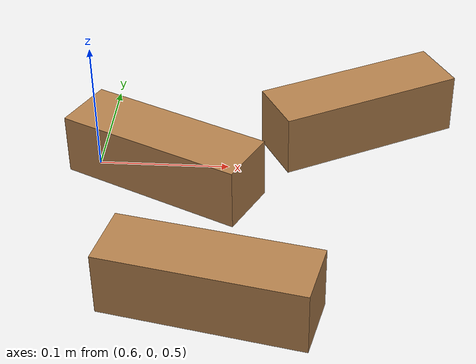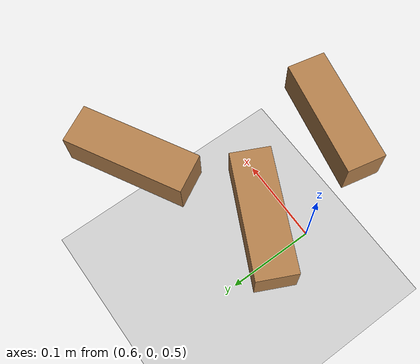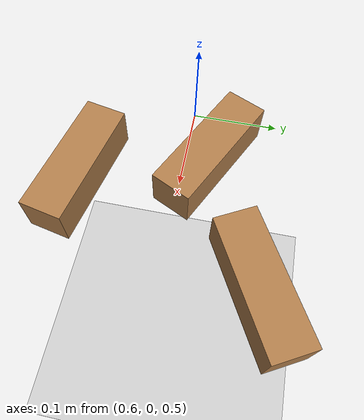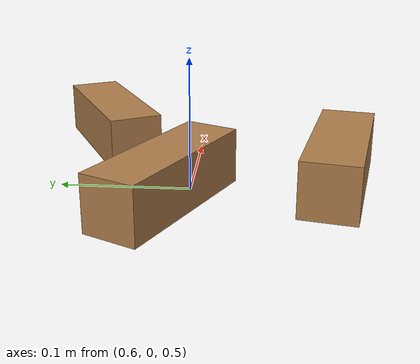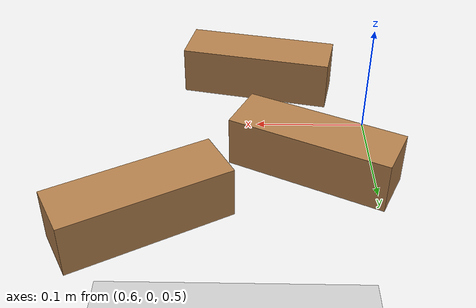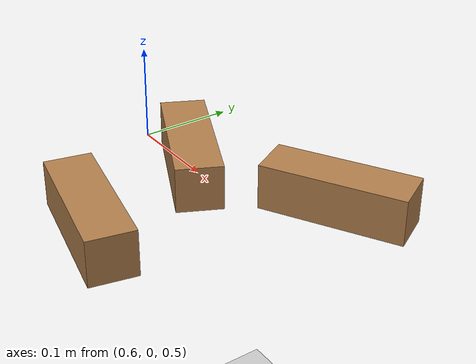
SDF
<sdf version="1.6">
 <world name="default">
  <light name="sun" type="directional">
   <pose>0 0 10 0 -0 0</pose>
   <diffuse>0.8 0.8 0.8 1</diffuse>
   <specular>0.2 0.2 0.2 1</specular>
   <attenuation>
    <range>1000</range>
    <constant>0.9</constant>
    <linear>0.01</linear>
    <quadratic>0.001</quadratic>
   </attenuation>
   <direction>-0.5 0.1 -0.9</direction>
  </light>
  <model name="ground_plane">
   <static>1</static>
   <link name="link">
    <collision name="collision">
     <geometry><plane><normal>0 0 1</normal><size>100 100</size></plane></geometry>
     <surface>
      <contact><collide_bitmask>65535</collide_bitmask></contact>
      <friction><ode><mu>100</mu><mu2>50</mu2></ode></friction>
     </surface>
    </collision>
    <visual name="visual">
     <cast_shadows>0</cast_shadows>
     <geometry><plane><normal>0 0 1</normal><size>100 100</size></plane></geometry>
     <material>
      <script><uri>file://media/materials/scripts/gazebo.material</uri><name>Gazebo/Grey</name></script>
     </material>
    </visual>
   </link>
  </model>
  <gravity>0 0 -9.8</gravity>
  <magnetic_field>6e-06 2.3e-05 -4.2e-05</magnetic_field>
  <atmosphere type="adiabatic"/>
  <physics name="default_physics" default="0" type="ode">
   <max_step_size>0.001</max_step_size>
   <real_time_factor>1</real_time_factor>
   <real_time_update_rate>1000</real_time_update_rate>
  </physics>
  <scene><ambient>0.4 0.4 0.4 1</ambient><background>0.7 0.7 0.7 1</background><shadows>1</shadows></scene>
  <audio><device>default</device></audio>
  <spherical_coordinates>
   <surface_model>EARTH_WGS84</surface_model>
   <latitude_deg>0</latitude_deg>
   <longitude_deg>0</longitude_deg>
   <elevation>0</elevation>
   <heading_deg>0</heading_deg>
  </spherical_coordinates>
  <model name="unit_box_0">
   <link name="link">
    <inertial>
     <mass>3</mass>
     <inertia>
      <ixx>0.681248</ixx>
      <ixy>0</ixy>
      <ixz>0</ixz>
      <iyy>0.308235</iyy>
      <iyz>0</iyz>
      <izz>0.681248</izz>
     </inertia>
    </inertial>
    <visual name="ModelPreview_1::link::visual_1">
     <geometry><box><size>0.05 0.15474 0.05</size></box></geometry>
     <material>
      <script><name>Gazebo/Wood</name><uri>file://media/materials/scripts/gazebo.material</uri></script>
      <ambient>0.3 0.3 0.3 1</ambient>
      <diffuse>0.7 0.7 0.7 1</diffuse>
      <specular>0.01 0.01 0.01 1</specular>
      <emissive>0 0 0 1</emissive>
      <shader type="vertex"><normal_map>__default__</normal_map></shader>
     </material>
    </visual>
    <visual name="visual">
     <geometry><box><size>0.05 0.15474 0.05</size></box></geometry>
     <material>
      <script><name>Gazebo/Wood</name><uri>file://media/materials/scripts/gazebo.material</uri></script>
      <ambient>0.3 0.3 0.3 1</ambient>
      <diffuse>0.7 0.7 0.7 1</diffuse>
      <specular>0.01 0.01 0.01 1</specular>
      <emissive>0 0 0 1</emissive>
      <shader type="vertex"><normal_map>__default__</normal_map></shader>
     </material>
    </visual>
    <collision name="collision">
     <geometry><box><size>0.05 0.15474 0.05</size></box></geometry>
     <surface>
      <friction>
       <ode><mu>10000</mu><mu2>10000</mu2><fdir1>0 0 0</fdir1><slip1>0</slip1><slip2>0</slip2></ode>
       <torsional>
        <coefficient>1</coefficient>
        <patch_radius>0</patch_radius>
        <surface_radius>0</surface_radius>
        <use_patch_radius>1</use_patch_radius>
        <ode><slip>0</slip></ode>
       </torsional>
      </friction>
      <bounce><restitution_coefficient>0</restitution_coefficient><threshold>1e+06</threshold></bounce>
      <contact>
       <collide_without_contact>0</collide_without_contact>
       <collide_without_contact_bitmask>1</collide_without_contact_bitmask>
       <collide_bitmask>1</collide_bitmask>
       <ode>
        <soft_cfm>0</soft_cfm>
        <soft_erp>0.2</soft_erp>
        <kp>1e+06</kp>
        <kd>1</kd>
        <max_vel>0.01</max_vel>
        <min_depth>0</min_depth>
       </ode>
       <bullet>
        <split_impulse>1</split_impulse>
        <split_impulse_penetration_threshold>-0.01</split_impulse_penetration_threshold>
        <soft_cfm>0</soft_cfm>
        <soft_erp>0.2</soft_erp>
        <kp>1e+13</kp>
        <kd>1</kd>
       </bullet>
      </contact>
     </surface>
    </collision>
   </link>
   <static>0</static>
   <pose>0.799946 0.102851 0.489991 1e-06 3e-06 -1.07117</pose>
  </model>
  <model name="unit_box_0_clone">
   <link name="link">
    <inertial>
     <mass>3</mass>
     <inertia>
      <ixx>0.681248</ixx>
      <ixy>0</ixy>
      <ixz>0</ixz>
      <iyy>0.308235</iyy>
      <iyz>0</iyz>
      <izz>0.681248</izz>
     </inertia>
    </inertial>
    <visual name="ModelPreview_1::link::visual_1">
     <geometry><box><size>0.05 0.15474 0.05</size></box></geometry>
     <material>
      <script><name>Gazebo/Wood</name><uri>file://media/materials/scripts/gazebo.material</uri></script>
      <ambient>0.3 0.3 0.3 1</ambient>
      <diffuse>0.7 0.7 0.7 1</diffuse>
      <specular>0.01 0.01 0.01 1</specular>
      <emissive>0 0 0 1</emissive>
      <shader type="vertex"><normal_map>__default__</normal_map></shader>
     </material>
    </visual>
    <visual name="visual">
     <geometry><box><size>0.05 0.15474 0.05</size></box></geometry>
     <material>
      <script><name>Gazebo/Wood</name><uri>file://media/materials/scripts/gazebo.material</uri></script>
      <ambient>0.3 0.3 0.3 1</ambient>
      <diffuse>0.7 0.7 0.7 1</diffuse>
      <specular>0.01 0.01 0.01 1</specular>
      <emissive>0 0 0 1</emissive>
      <shader type="vertex"><normal_map>__default__</normal_map></shader>
     </material>
    </visual>
    <collision name="collision">
     <geometry><box><size>0.05 0.15474 0.05</size></box></geometry>
     <surface>
      <friction>
       <ode><mu>10000</mu><mu2>10000</mu2><fdir1>0 0 0</fdir1><slip1>0</slip1><slip2>0</slip2></ode>
       <torsional>
        <coefficient>1</coefficient>
        <patch_radius>0</patch_radius>
        <surface_radius>0</surface_radius>
        <use_patch_radius>1</use_patch_radius>
        <ode><slip>0</slip></ode>
       </torsional>
      </friction>
      <bounce><restitution_coefficient>0</restitution_coefficient><threshold>1e+06</threshold></bounce>
      <contact>
       <collide_without_contact>0</collide_without_contact>
       <collide_without_contact_bitmask>1</collide_without_contact_bitmask>
       <collide_bitmask>1</collide_bitmask>
       <ode>
        <soft_cfm>0</soft_cfm>
        <soft_erp>0.2</soft_erp>
        <kp>1e+06</kp>
        <kd>1</kd>
        <max_vel>0.01</max_vel>
        <min_depth>0</min_depth>
       </ode>
       <bullet>
        <split_impulse>1</split_impulse>
        <split_impulse_penetration_threshold>-0.01</split_impulse_penetration_threshold>
        <soft_cfm>0</soft_cfm>
        <soft_erp>0.2</soft_erp>
        <kp>1e+13</kp>
        <kd>1</kd>
       </bullet>
      </contact>
     </surface>
    </collision>
   </link>
   <static>0</static>
   <pose>0.646062 0.026075 0.48999 2e-06 -4e-06 1.11955</pose>
  </model>
  <model name="unit_box_0_clone_0">
   <link name="link">
    <inertial>
     <mass>3</mass>
     <inertia>
      <ixx>0.681248</ixx>
      <ixy>0</ixy>
      <ixz>0</ixz>
      <iyy>0.308235</iyy>
      <iyz>0</iyz>
      <izz>0.681248</izz>
     </inertia>
    </inertial>
    <visual name="ModelPreview_1::link::visual_1">
     <geometry><box><size>0.05 0.15474 0.05</size></box></geometry>
     <material>
      <script><name>Gazebo/Wood</name><uri>file://media/materials/scripts/gazebo.material</uri></script>
      <ambient>0.3 0.3 0.3 1</ambient>
      <diffuse>0.7 0.7 0.7 1</diffuse>
      <specular>0.01 0.01 0.01 1</specular>
      <emissive>0 0 0 1</emissive>
      <shader type="vertex"><normal_map>__default__</normal_map></shader>
     </material>
    </visual>
    <visual name="visual">
     <geometry><box><size>0.05 0.15474 0.05</size></box></geometry>
     <material>
      <script><name>Gazebo/Wood</name><uri>file://media/materials/scripts/gazebo.material</uri></script>
      <ambient>0.3 0.3 0.3 1</ambient>
      <diffuse>0.7 0.7 0.7 1</diffuse>
      <specular>0.01 0.01 0.01 1</specular>
      <emissive>0 0 0 1</emissive>
      <shader type="vertex"><normal_map>__default__</normal_map></shader>
     </material>
    </visual>
    <collision name="collision">
     <geometry><box><size>0.05 0.15474 0.05</size></box></geometry>
     <surface>
      <friction>
       <ode><mu>10000</mu><mu2>10000</mu2><fdir1>0 0 0</fdir1><slip1>0</slip1><slip2>0</slip2></ode>
       <torsional>
        <coefficient>1</coefficient>
        <patch_radius>0</patch_radius>
        <surface_radius>0</surface_radius>
        <use_patch_radius>1</use_patch_radius>
        <ode><slip>0</slip></ode>
       </torsional>
      </friction>
      <bounce><restitution_coefficient>0</restitution_coefficient><threshold>1e+06</threshold></bounce>
      <contact>
       <collide_without_contact>0</collide_without_contact>
       <collide_without_contact_bitmask>1</collide_without_contact_bitmask>
       <collide_bitmask>1</collide_bitmask>
       <ode>
        <soft_cfm>0</soft_cfm>
        <soft_erp>0.2</soft_erp>
        <kp>1e+06</kp>
        <kd>1</kd>
        <max_vel>0.01</max_vel>
        <min_depth>0</min_depth>
       </ode>
       <bullet>
        <split_impulse>1</split_impulse>
        <split_impulse_penetration_threshold>-0.01</split_impulse_penetration_threshold>
        <soft_cfm>0</soft_cfm>
        <soft_erp>0.2</soft_erp>
        <kp>1e+13</kp>
        <kd>1</kd>
       </bullet>
      </contact>
     </surface>
    </collision>
   </link>
   <static>0</static>
   <pose>0.696734 -0.12201 0.48999 1e-06 -4e-06 1.36444</pose>
  </model>
 </world>
</sdf>
